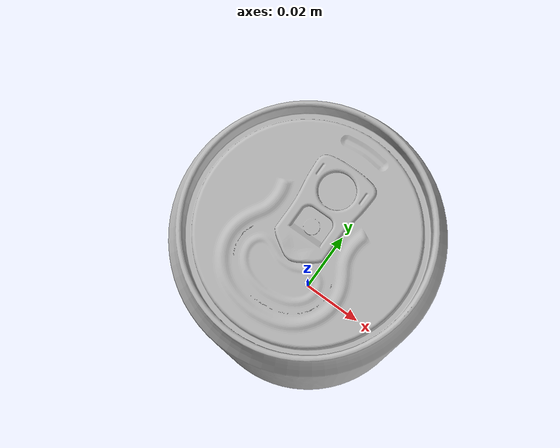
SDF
<?xml version="1.0" ?>
<sdf version="1.5">
  <model name="mpnet_pepsi">
    <link name="mpnet_pepsi_link">
      <inertial>
        <mass>0.2</mass>
      </inertial>
      <visual name="mpnet_pepsi_visual">
        <geometry>
          <mesh>
            <uri>model://mpnet_pepsi/meshes/pepsi.STL</uri>
            <scale>0.001 0.001 0.001</scale>
          </mesh>
        </geometry>
      </visual>

      <collision name="mpnet_pepsi_collision">
        <geometry>
          <mesh>
            <uri>model://mpnet_pepsi/meshes/pepsi.STL</uri>
            <scale>0.001 0.001 0.001</scale>
          </mesh>
        </geometry>
      </collision>

    </link>
  </model>
</sdf>
